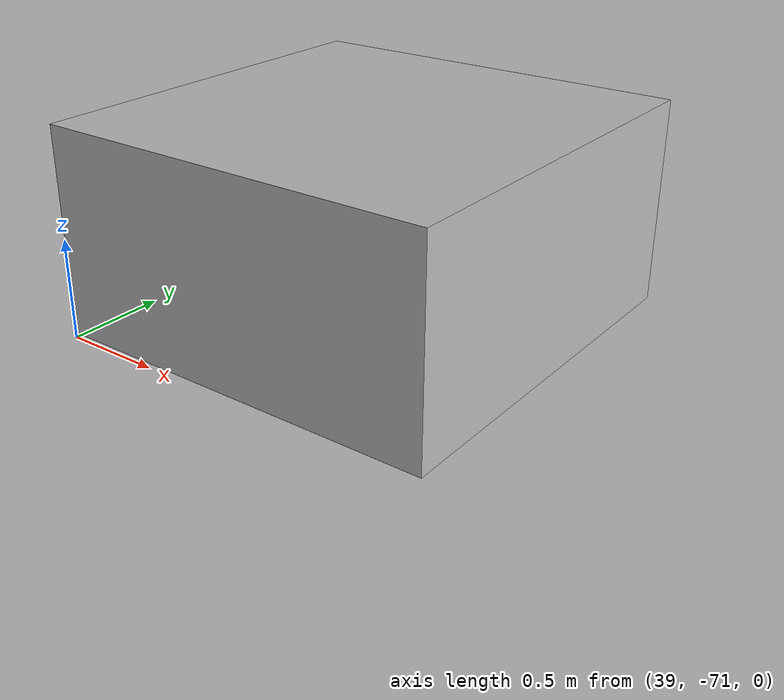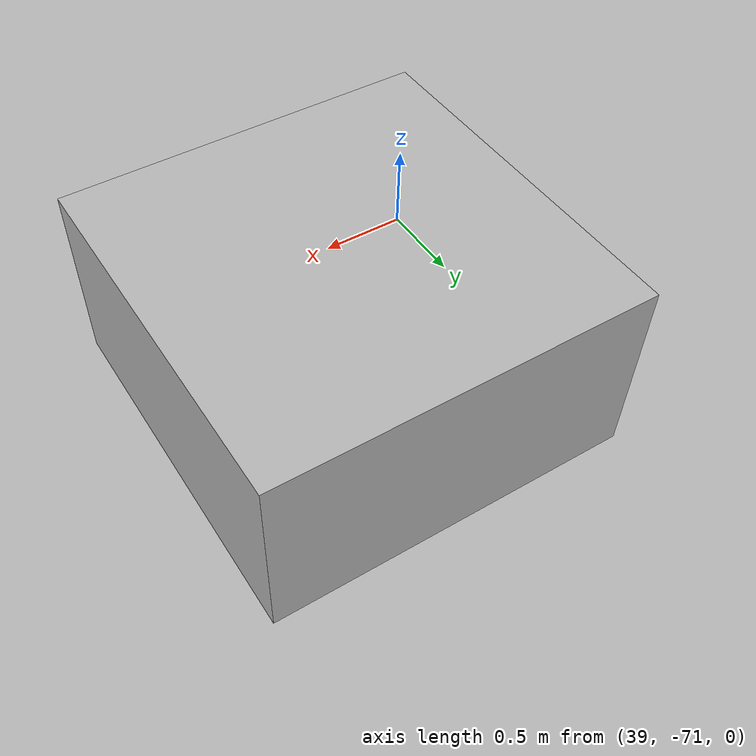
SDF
<sdf version="1.7">
 <world name="default">
  <model name="ground">
   <pose>75 -41.8 0 0 -0 1.57</pose>
   <static>1</static>
   <link name="ground">
    <collision name="ground_coll"><geometry><box><size>83.6 150 0.05</size></box></geometry></collision>
    <visual name="ground_vis">
     <geometry><box><size>83.6 150 0.05</size></box></geometry>
     <material>
      <script>
       <uri>/home/bluevery8/workspace/oom_ws/install/ros2_term_project/share/ros2_term_project/worlds/./course.material</uri>
       <name>course</name>
      </script>
     </material>
    </visual>
   </link>
  </model>
  <model name="moving_box">
   <pose>40 -70.0 0.05 0 0 0</pose>
   <link name="link">
    <collision name="collision"><geometry><box><size>2 2 2</size></box></geometry></collision>
    <visual name="visual"><geometry><box><size>2 2 2</size></box></geometry></visual>
   </link>
   <plugin name="planar_move" filename="libgazebo_ros_planar_move.so">
    <ros>
     <namespace>demo</namespace>
     <remapping>cmd_vel:=box_cmd_demo</remapping>
     <remapping>odom:=box_odom_demo</remapping>
    </ros>
    <update_rate>100</update_rate>
    <publish_rate>10</publish_rate>
    <publish_odom>true</publish_odom>
    <publish_odom_tf>true</publish_odom_tf>
    <odometry_frame>odom_demo</odometry_frame>
    <robot_base_frame>link</robot_base_frame>
    <covariance_x>0.0001</covariance_x>
    <covariance_y>0.0001</covariance_y>
    <covariance_yaw>0.01</covariance_yaw>
   </plugin>
  </model>
 </world>
</sdf>
